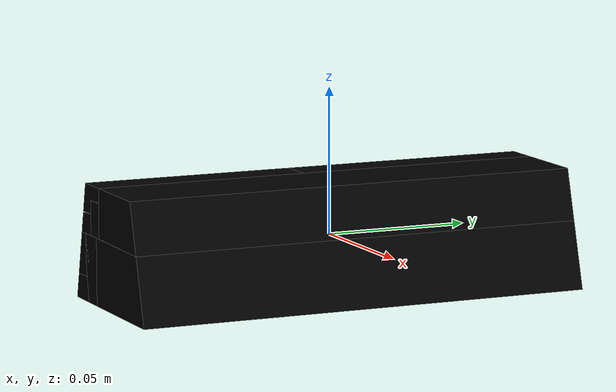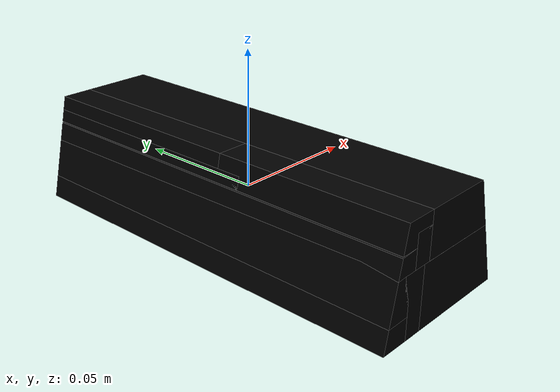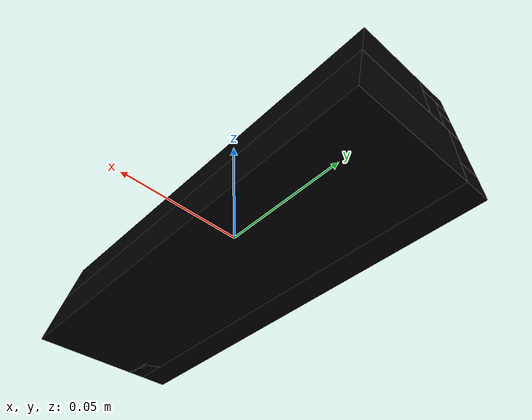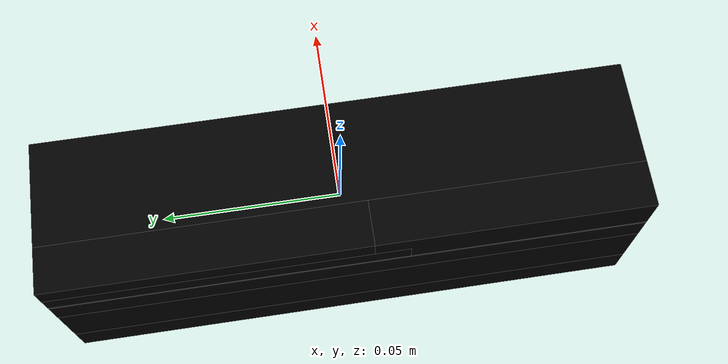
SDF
<?xml version='1.0' encoding='UTF-8'?>
<sdf version="1.7">
  <model name="trapezoid">
    <link name="vertical_link">
      <inertial>
        <pose>0 0 0 0 0 0</pose>
        <mass>1</mass>
        <inertia>
          <ixx>0.0022648889</ixx>
          <iyy>0.00034840722</iyy>
          <izz>0.002350185</izz>
          <ixy>2.3469871e-20</ixy>
          <ixz>4.9333333e-06</ixz>
          <iyz>-2.3528693e-21</iyz>
        </inertia>
      </inertial>
      <visual name="convex_0">
        <pose>0 0 0 0 0 0</pose>
        <geometry>
          <mesh>
            <uri>trapezoid_convex_0.obj</uri>
          </mesh>
        </geometry>
        <material>
          <diffuse>0 0 0 1</diffuse>
        </material>
      </visual>
      <collision name="convex_0_volume">
        <pose>0 0 0 0 0 0</pose>
        <geometry>
          <mesh>
            <uri>trapezoid_convex_0.obj</uri>
          </mesh>
        </geometry>
        <drake:proximity_properties xmlns:drake="uri:drake">
          <drake:compliant_hydroelastic/>
          <drake:hydroelastic_modulus> 3.0e7 </drake:hydroelastic_modulus>
          <drake:mesh_resolution_hint> 0.18 </drake:mesh_resolution_hint>
          <drake:hunt_crossley_dissipation>10</drake:hunt_crossley_dissipation>
          <drake:mu_dynamic>0.3</drake:mu_dynamic>
        </drake:proximity_properties>
      </collision>
      <visual name="convex_1">
        <pose>0 0 0 0 0 0</pose>
        <geometry>
          <mesh>
            <uri>trapezoid_convex_1.obj</uri>
          </mesh>
        </geometry>
        <material>
          <diffuse>0 0 0 1</diffuse>
        </material>
      </visual>
      <collision name="convex_1_volume">
        <pose>0 0 0 0 0 0</pose>
        <geometry>
          <mesh>
            <uri>trapezoid_convex_1.obj</uri>
          </mesh>
        </geometry>
        <drake:proximity_properties xmlns:drake="uri:drake">
          <drake:compliant_hydroelastic/>
          <drake:hydroelastic_modulus> 3.0e7 </drake:hydroelastic_modulus>
          <drake:mesh_resolution_hint> 0.18 </drake:mesh_resolution_hint>
          <drake:hunt_crossley_dissipation>10</drake:hunt_crossley_dissipation>
          <drake:mu_dynamic>0.3</drake:mu_dynamic>
        </drake:proximity_properties>
      </collision>
      <visual name="convex_2">
        <pose>0 0 0 0 0 0</pose>
        <geometry>
          <mesh>
            <uri>trapezoid_convex_2.obj</uri>
          </mesh>
        </geometry>
        <material>
          <diffuse>0 0 0 1</diffuse>
        </material>
      </visual>
      <collision name="convex_2_volume">
        <pose>0 0 0 0 0 0</pose>
        <geometry>
          <mesh>
            <uri>trapezoid_convex_2.obj</uri>
          </mesh>
        </geometry>
        <drake:proximity_properties xmlns:drake="uri:drake">
          <drake:compliant_hydroelastic/>
          <drake:hydroelastic_modulus> 3.0e7 </drake:hydroelastic_modulus>
          <drake:mesh_resolution_hint> 0.18 </drake:mesh_resolution_hint>
          <drake:hunt_crossley_dissipation>10</drake:hunt_crossley_dissipation>
          <drake:mu_dynamic>0.3</drake:mu_dynamic>
        </drake:proximity_properties>
      </collision>
      <visual name="convex_3">
        <pose>0 0 0 0 0 0</pose>
        <geometry>
          <mesh>
            <uri>trapezoid_convex_3.obj</uri>
          </mesh>
        </geometry>
        <material>
          <diffuse>0 0 0 1</diffuse>
        </material>
      </visual>
      <collision name="convex_3_volume">
        <pose>0 0 0 0 0 0</pose>
        <geometry>
          <mesh>
            <uri>trapezoid_convex_3.obj</uri>
          </mesh>
        </geometry>
        <drake:proximity_properties xmlns:drake="uri:drake">
          <drake:compliant_hydroelastic/>
          <drake:hydroelastic_modulus> 3.0e7 </drake:hydroelastic_modulus>
          <drake:mesh_resolution_hint> 0.18 </drake:mesh_resolution_hint>
          <drake:hunt_crossley_dissipation>10</drake:hunt_crossley_dissipation>
          <drake:mu_dynamic>0.3</drake:mu_dynamic>
        </drake:proximity_properties>
      </collision>
      <visual name="convex_4">
        <pose>0 0 0 0 0 0</pose>
        <geometry>
          <mesh>
            <uri>trapezoid_convex_4.obj</uri>
          </mesh>
        </geometry>
        <material>
          <diffuse>0 0 0 1</diffuse>
        </material>
      </visual>
      <collision name="convex_4_volume">
        <pose>0 0 0 0 0 0</pose>
        <geometry>
          <mesh>
            <uri>trapezoid_convex_4.obj</uri>
          </mesh>
        </geometry>
        <drake:proximity_properties xmlns:drake="uri:drake">
          <drake:compliant_hydroelastic/>
          <drake:hydroelastic_modulus> 3.0e7 </drake:hydroelastic_modulus>
          <drake:mesh_resolution_hint> 0.18 </drake:mesh_resolution_hint>
          <drake:hunt_crossley_dissipation>10</drake:hunt_crossley_dissipation>
          <drake:mu_dynamic>0.3</drake:mu_dynamic>
        </drake:proximity_properties>
      </collision>
      <visual name="convex_5">
        <pose>0 0 0 0 0 0</pose>
        <geometry>
          <mesh>
            <uri>trapezoid_convex_5.obj</uri>
          </mesh>
        </geometry>
        <material>
          <diffuse>0 0 0 1</diffuse>
        </material>
      </visual>
      <collision name="convex_5_volume">
        <pose>0 0 0 0 0 0</pose>
        <geometry>
          <mesh>
            <uri>trapezoid_convex_5.obj</uri>
          </mesh>
        </geometry>
        <drake:proximity_properties xmlns:drake="uri:drake">
          <drake:compliant_hydroelastic/>
          <drake:hydroelastic_modulus> 3.0e7 </drake:hydroelastic_modulus>
          <drake:mesh_resolution_hint> 0.18 </drake:mesh_resolution_hint>
          <drake:hunt_crossley_dissipation>10</drake:hunt_crossley_dissipation>
          <drake:mu_dynamic>0.3</drake:mu_dynamic>
        </drake:proximity_properties>
      </collision>
      <visual name="convex_6">
        <pose>0 0 0 0 0 0</pose>
        <geometry>
          <mesh>
            <uri>trapezoid_convex_6.obj</uri>
          </mesh>
        </geometry>
        <material>
          <diffuse>0 0 0 1</diffuse>
        </material>
      </visual>
      <collision name="convex_6_volume">
        <pose>0 0 0 0 0 0</pose>
        <geometry>
          <mesh>
            <uri>trapezoid_convex_6.obj</uri>
          </mesh>
        </geometry>
        <drake:proximity_properties xmlns:drake="uri:drake">
          <drake:compliant_hydroelastic/>
          <drake:hydroelastic_modulus> 3.0e7 </drake:hydroelastic_modulus>
          <drake:mesh_resolution_hint> 0.18 </drake:mesh_resolution_hint>
          <drake:hunt_crossley_dissipation>10</drake:hunt_crossley_dissipation>
          <drake:mu_dynamic>0.3</drake:mu_dynamic>
        </drake:proximity_properties>
      </collision>
      <visual name="convex_7">
        <pose>0 0 0 0 0 0</pose>
        <geometry>
          <mesh>
            <uri>trapezoid_convex_7.obj</uri>
          </mesh>
        </geometry>
        <material>
          <diffuse>0 0 0 1</diffuse>
        </material>
      </visual>
      <collision name="convex_7_volume">
        <pose>0 0 0 0 0 0</pose>
        <geometry>
          <mesh>
            <uri>trapezoid_convex_7.obj</uri>
          </mesh>
        </geometry>
        <drake:proximity_properties xmlns:drake="uri:drake">
          <drake:compliant_hydroelastic/>
          <drake:hydroelastic_modulus> 3.0e7 </drake:hydroelastic_modulus>
          <drake:mesh_resolution_hint> 0.18 </drake:mesh_resolution_hint>
          <drake:hunt_crossley_dissipation>10</drake:hunt_crossley_dissipation>
          <drake:mu_dynamic>0.3</drake:mu_dynamic>
        </drake:proximity_properties>
      </collision>
      <visual name="convex_8">
        <pose>0 0 0 0 0 0</pose>
        <geometry>
          <mesh>
            <uri>trapezoid_convex_8.obj</uri>
          </mesh>
        </geometry>
        <material>
          <diffuse>0 0 0 1</diffuse>
        </material>
      </visual>
      <collision name="convex_8_volume">
        <pose>0 0 0 0 0 0</pose>
        <geometry>
          <mesh>
            <uri>trapezoid_convex_8.obj</uri>
          </mesh>
        </geometry>
        <drake:proximity_properties xmlns:drake="uri:drake">
          <drake:compliant_hydroelastic/>
          <drake:hydroelastic_modulus> 3.0e7 </drake:hydroelastic_modulus>
          <drake:mesh_resolution_hint> 0.18 </drake:mesh_resolution_hint>
          <drake:hunt_crossley_dissipation>10</drake:hunt_crossley_dissipation>
          <drake:mu_dynamic>0.3</drake:mu_dynamic>
        </drake:proximity_properties>
      </collision>
      <visual name="convex_9">
        <pose>0 0 0 0 0 0</pose>
        <geometry>
          <mesh>
            <uri>trapezoid_convex_9.obj</uri>
          </mesh>
        </geometry>
        <material>
          <diffuse>0 0 0 1</diffuse>
        </material>
      </visual>
      <collision name="convex_9_volume">
        <pose>0 0 0 0 0 0</pose>
        <geometry>
          <mesh>
            <uri>trapezoid_convex_9.obj</uri>
          </mesh>
        </geometry>
        <drake:proximity_properties xmlns:drake="uri:drake">
          <drake:compliant_hydroelastic/>
          <drake:hydroelastic_modulus> 3.0e7 </drake:hydroelastic_modulus>
          <drake:mesh_resolution_hint> 0.18 </drake:mesh_resolution_hint>
          <drake:hunt_crossley_dissipation>10</drake:hunt_crossley_dissipation>
          <drake:mu_dynamic>0.3</drake:mu_dynamic>
        </drake:proximity_properties>
      </collision>
    </link>
  </model>
</sdf>
